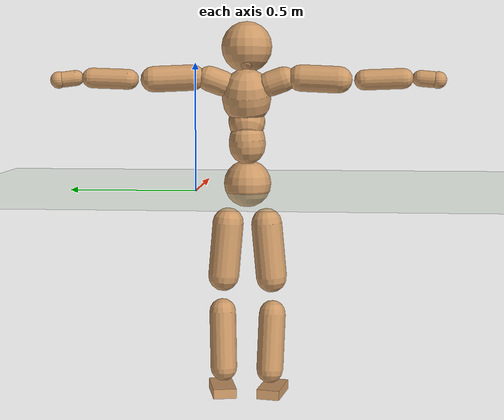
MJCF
<mujoco model="humanoid">
  <compiler coordinate="local"/>
  <default>
    <joint damping="0.0" armature="0.01" stiffness="0.0" limited="true"/>
    <geom conaffinity="1" condim="3" contype="7" margin="0.001" rgba="0.8 0.6 .4 1"/>
  </default>
  <asset>
    <texture type="skybox" builtin="gradient" rgb1=".4 .5 .6" rgb2="0 0 0" width="100" height="100"/>
    <texture builtin="flat" height="1278" mark="cross" markrgb="1 1 1" name="texgeom" random="0.01" rgb1="0.8 0.6 0.4" rgb2="0.8 0.6 0.4" type="cube" width="127"/>
    <texture builtin="checker" height="100" name="texplane" rgb1="0 0 0" rgb2="0.8 0.8 0.8" type="2d" width="100"/>
    <material name="MatPlane" reflectance="0.5" shininess="1" specular="1" texrepeat="60 60" texture="texplane"/>
    <material name="geom" texture="texgeom" texuniform="true"/>
  </asset>
  <worldbody>
    <light cutoff="100" diffuse="1 1 1" dir="-0 0 -1.3" directional="true" exponent="1" pos="0 0 1.3" specular=".1 .1 .1"/>
    <geom conaffinity="1" condim="3" name="floor" pos="0 0 0" rgba="0.8 0.9 0.8 1" size="100 100 .2" type="plane" material="MatPlane"/>
    <body name="Pelvis" pos="-0.0011 -0.2038 0.0321">
      <freejoint name="Pelvis"/>
      <geom type="sphere" contype="1" conaffinity="1" density="500" size="0.0924" pos="0.0000 0.0000 0.0000" name="Pelvis"/>
      <body name="L_Hip" pos="-0.0043 0.0707 -0.0867">
        <joint name="L_Hip_x" type="hinge" pos="0 0 0" axis="1 0 0" stiffness="800" damping="80" armature="0.02" range="-180.0000 180.0000"/>
        <joint name="L_Hip_y" type="hinge" pos="0 0 0" axis="0 1 0" stiffness="800" damping="80" armature="0.02" range="-180.0000 180.0000"/>
        <joint name="L_Hip_z" type="hinge" pos="0 0 0" axis="0 0 1" stiffness="800" damping="80" armature="0.02" range="-180.0000 180.0000"/>
        <geom type="capsule" contype="1" conaffinity="1" density="500" fromto="-0.0016 0.0057 -0.0699 -0.0065 0.0229 -0.2796" size="0.0611" name="L_Hip"/>
        <body name="L_Knee" pos="-0.0081 0.0286 -0.3495">
          <joint name="L_Knee_x" type="hinge" pos="0 0 0" axis="1 0 0" stiffness="800" damping="80" armature="0.02" range="-180.0000 180.0000"/>
          <joint name="L_Knee_y" type="hinge" pos="0 0 0" axis="0 1 0" stiffness="800" damping="80" armature="0.02" range="-180.0000 180.0000"/>
          <joint name="L_Knee_z" type="hinge" pos="0 0 0" axis="0 0 1" stiffness="800" damping="80" armature="0.02" range="-180.0000 180.0000"/>
          <geom type="capsule" contype="1" conaffinity="1" density="500" fromto="-0.0084 -0.0022 -0.0737 -0.0336 -0.0087 -0.2947" size="0.0523" name="L_Knee"/>
          <body name="L_Ankle" pos="-0.042 -0.0108 -0.3683">
            <joint name="L_Ankle_x" type="hinge" pos="0 0 0" axis="1 0 0" stiffness="800" damping="80" armature="0.02" range="-180.0000 180.0000"/>
            <joint name="L_Ankle_y" type="hinge" pos="0 0 0" axis="0 1 0" stiffness="800" damping="80" armature="0.02" range="-180.0000 180.0000"/>
            <joint name="L_Ankle_z" type="hinge" pos="0 0 0" axis="0 0 1" stiffness="800" damping="80" armature="0.02" range="-180.0000 180.0000"/>
            <geom type="box" contype="1" conaffinity="1" density="500" pos="0.0561 0.0122 -0.0267" size="0.0815 0.046 0.0194" quat="0.9942 0.0000 0.0000 0.1071" name="L_Ankle"/>
            <body name="L_Toe" pos="0.1122 0.0245 -0.0533">
              <joint name="L_Toe_x" type="hinge" pos="0 0 0" axis="1 0 0" stiffness="500" damping="50" armature="0.02" range="-180.0000 180.0000"/>
              <joint name="L_Toe_y" type="hinge" pos="0 0 0" axis="0 1 0" stiffness="500" damping="50" armature="0.02" range="-180.0000 180.0000"/>
              <joint name="L_Toe_z" type="hinge" pos="0 0 0" axis="0 0 1" stiffness="500" damping="50" armature="0.02" range="-180.0000 180.0000"/>
              <geom type="box" contype="1" conaffinity="1" density="500" pos="0.0000 0.0000 0.0264" size="0.0009 0.0023 0.001" quat="0.9935 0.0000 0.0000 0.1136" name="L_Toe"/>
            </body>
          </body>
        </body>
      </body>
      <body name="R_Hip" pos="-0.0016 -0.0688 -0.0862">
        <joint name="R_Hip_x" type="hinge" pos="0 0 0" axis="1 0 0" stiffness="800" damping="80" armature="0.02" range="-180.0000 180.0000"/>
        <joint name="R_Hip_y" type="hinge" pos="0 0 0" axis="0 1 0" stiffness="800" damping="80" armature="0.02" range="-180.0000 180.0000"/>
        <joint name="R_Hip_z" type="hinge" pos="0 0 0" axis="0 0 1" stiffness="800" damping="80" armature="0.02" range="-180.0000 180.0000"/>
        <geom type="capsule" contype="1" conaffinity="1" density="500" fromto="-0.0020 -0.0067 -0.0710 -0.0081 -0.0268 -0.2839" size="0.0604" name="R_Hip"/>
        <body name="R_Knee" pos="-0.0101 -0.0335 -0.3549">
          <joint name="R_Knee_x" type="hinge" pos="0 0 0" axis="1 0 0" stiffness="800" damping="80" armature="0.02" range="-180.0000 180.0000"/>
          <joint name="R_Knee_y" type="hinge" pos="0 0 0" axis="0 1 0" stiffness="800" damping="80" armature="0.02" range="-180.0000 180.0000"/>
          <joint name="R_Knee_z" type="hinge" pos="0 0 0" axis="0 0 1" stiffness="800" damping="80" armature="0.02" range="-180.0000 180.0000"/>
          <geom type="capsule" contype="1" conaffinity="1" density="500" fromto="-0.0082 0.0025 -0.0738 -0.0330 0.0101 -0.2951" size="0.0525" name="R_Knee"/>
          <body name="R_Ankle" pos="-0.0412 0.0126 -0.3689">
            <joint name="R_Ankle_x" type="hinge" pos="0 0 0" axis="1 0 0" stiffness="800" damping="80" armature="0.02" range="-180.0000 180.0000"/>
            <joint name="R_Ankle_y" type="hinge" pos="0 0 0" axis="0 1 0" stiffness="800" damping="80" armature="0.02" range="-180.0000 180.0000"/>
            <joint name="R_Ankle_z" type="hinge" pos="0 0 0" axis="0 0 1" stiffness="800" damping="80" armature="0.02" range="-180.0000 180.0000"/>
            <geom type="box" contype="1" conaffinity="1" density="500" pos="0.0578 -0.0113 -0.0223" size="0.082 0.0455 0.0194" quat="0.9954 0.0000 0.0000 -0.0961" name="R_Ankle"/>
            <body name="R_Toe" pos="0.1156 -0.0225 -0.0446">
              <joint name="R_Toe_x" type="hinge" pos="0 0 0" axis="1 0 0" stiffness="500" damping="50" armature="0.02" range="-180.0000 180.0000"/>
              <joint name="R_Toe_y" type="hinge" pos="0 0 0" axis="0 1 0" stiffness="500" damping="50" armature="0.02" range="-180.0000 180.0000"/>
              <joint name="R_Toe_z" type="hinge" pos="0 0 0" axis="0 0 1" stiffness="500" damping="50" armature="0.02" range="-180.0000 180.0000"/>
              <geom type="box" contype="1" conaffinity="1" density="500" pos="0.0000 0.0000 0.0239" size="0.0009 0.0023 0.0011" quat="0.9963 0.0000 0.0000 -0.0863" name="R_Toe"/>
            </body>
          </body>
        </body>
      </body>
      <body name="Torso" pos="-0.025 -0.0022 0.1003">
        <joint name="Torso_x" type="hinge" pos="0 0 0" axis="1 0 0" stiffness="1000" damping="100" armature="0.02" range="-180.0000 180.0000"/>
        <joint name="Torso_y" type="hinge" pos="0 0 0" axis="0 1 0" stiffness="1000" damping="100" armature="0.02" range="-180.0000 180.0000"/>
        <joint name="Torso_z" type="hinge" pos="0 0 0" axis="0 0 1" stiffness="1000" damping="100" armature="0.02" range="-180.0000 180.0000"/>
        <geom type="capsule" contype="1" conaffinity="1" density="500" fromto="-0.0020 0.0019 0.0715 -0.0013 0.0013 0.0477" size="0.0705" name="Torso"/>
        <body name="Spine" pos="-0.0033 0.0032 0.1192">
          <joint name="Spine_x" type="hinge" pos="0 0 0" axis="1 0 0" stiffness="1000" damping="100" armature="0.02" range="-180.0000 180.0000"/>
          <joint name="Spine_y" type="hinge" pos="0 0 0" axis="0 1 0" stiffness="1000" damping="100" armature="0.02" range="-180.0000 180.0000"/>
          <joint name="Spine_z" type="hinge" pos="0 0 0" axis="0 0 1" stiffness="1000" damping="100" armature="0.02" range="-180.0000 180.0000"/>
          <geom type="capsule" contype="1" conaffinity="1" density="500" fromto="0.0162 0.0013 0.0282 0.0108 0.0009 0.0188" size="0.0712" name="Spine"/>
          <body name="Chest" pos="0.027 0.0021 0.047">
            <joint name="Chest_x" type="hinge" pos="0 0 0" axis="1 0 0" stiffness="1000" damping="100" armature="0.02" range="-180.0000 180.0000"/>
            <joint name="Chest_y" type="hinge" pos="0 0 0" axis="0 1 0" stiffness="1000" damping="100" armature="0.02" range="-180.0000 180.0000"/>
            <joint name="Chest_z" type="hinge" pos="0 0 0" axis="0 0 1" stiffness="1000" damping="100" armature="0.02" range="-180.0000 180.0000"/>
            <geom type="capsule" contype="1" conaffinity="1" density="500" fromto="-0.0264 -0.0008 0.0868 -0.0176 -0.0005 0.0579" size="0.0941" name="Chest"/>
            <body name="Neck" pos="-0.0512 -0.0022 0.2033">
              <joint name="Neck_x" type="hinge" pos="0 0 0" axis="1 0 0" stiffness="500" damping="50" armature="0.02" range="-180.0000 180.0000"/>
              <joint name="Neck_y" type="hinge" pos="0 0 0" axis="0 1 0" stiffness="500" damping="50" armature="0.02" range="-180.0000 180.0000"/>
              <joint name="Neck_z" type="hinge" pos="0 0 0" axis="0 0 1" stiffness="500" damping="50" armature="0.02" range="-180.0000 180.0000"/>
              <geom type="capsule" contype="1" conaffinity="1" density="500" fromto="0.0095 0.0005 0.0116 0.0381 0.0019 0.0465" size="0.0406" name="Neck"/>
              <body name="Head" pos="0.0477 0.0024 0.0582">
                <joint name="Head_x" type="hinge" pos="0 0 0" axis="1 0 0" stiffness="500" damping="50" armature="0.02" range="-180.0000 180.0000"/>
                <joint name="Head_y" type="hinge" pos="0 0 0" axis="0 1 0" stiffness="500" damping="50" armature="0.02" range="-180.0000 180.0000"/>
                <joint name="Head_z" type="hinge" pos="0 0 0" axis="0 0 1" stiffness="500" damping="50" armature="0.02" range="-180.0000 180.0000"/>
                <geom type="sphere" contype="1" conaffinity="1" density="500" size="0.0978" pos="0.0000 0.0000 0.0000" name="Head"/>
              </body>
            </body>
            <body name="L_Thorax" pos="-0.0383 0.073 0.1162">
              <joint name="L_Thorax_x" type="hinge" pos="0 0 0" axis="1 0 0" stiffness="500" damping="50" armature="0.02" range="-180.0000 180.0000"/>
              <joint name="L_Thorax_y" type="hinge" pos="0 0 0" axis="0 1 0" stiffness="500" damping="50" armature="0.02" range="-180.0000 180.0000"/>
              <joint name="L_Thorax_z" type="hinge" pos="0 0 0" axis="0 0 1" stiffness="500" damping="50" armature="0.02" range="-180.0000 180.0000"/>
              <geom type="capsule" contype="1" conaffinity="1" density="500" fromto="-0.0015 0.0167 0.0061 -0.0058 0.0670 0.0245" size="0.0491" name="L_Thorax"/>
              <body name="L_Shoulder" pos="-0.0073 0.0837 0.0306">
                <joint name="L_Shoulder_x" type="hinge" pos="0 0 0" axis="1 0 0" stiffness="500" damping="50" armature="0.02" range="-720.0000 720.0000"/>
                <joint name="L_Shoulder_y" type="hinge" pos="0 0 0" axis="0 1 0" stiffness="500" damping="50" armature="0.02" range="-720.0000 720.0000"/>
                <joint name="L_Shoulder_z" type="hinge" pos="0 0 0" axis="0 0 1" stiffness="500" damping="50" armature="0.02" range="-720.0000 720.0000"/>
                <geom type="capsule" contype="1" conaffinity="1" density="500" fromto="-0.0055 0.0489 -0.0021 -0.0220 0.1957 -0.0084" size="0.0501" name="L_Shoulder"/>
                <body name="L_Elbow" pos="-0.0275 0.2446 -0.0104">
                  <joint name="L_Elbow_x" type="hinge" pos="0 0 0" axis="1 0 0" stiffness="500" damping="50" armature="0.02" range="-720.0000 720.0000"/>
                  <joint name="L_Elbow_y" type="hinge" pos="0 0 0" axis="0 1 0" stiffness="500" damping="50" armature="0.02" range="-720.0000 720.0000"/>
                  <joint name="L_Elbow_z" type="hinge" pos="0 0 0" axis="0 0 1" stiffness="500" damping="50" armature="0.02" range="-720.0000 720.0000"/>
                  <geom type="capsule" contype="1" conaffinity="1" density="500" fromto="0.0001 0.0470 0.0017 0.0003 0.1880 0.0070" size="0.0389" name="L_Elbow"/>
                  <body name="L_Wrist" pos="0.0003 0.235 0.0087">
                    <joint name="L_Wrist_x" type="hinge" pos="0 0 0" axis="1 0 0" stiffness="300" damping="30" armature="0.02" range="-180.0000 180.0000"/>
                    <joint name="L_Wrist_y" type="hinge" pos="0 0 0" axis="0 1 0" stiffness="300" damping="30" armature="0.02" range="-180.0000 180.0000"/>
                    <joint name="L_Wrist_z" type="hinge" pos="0 0 0" axis="0 0 1" stiffness="300" damping="30" armature="0.02" range="-180.0000 180.0000"/>
                    <geom type="capsule" contype="1" conaffinity="1" density="500" fromto="-0.0027 0.0161 -0.0019 -0.0107 0.0644 -0.0078" size="0.0304" name="L_Wrist"/>
                    <body name="L_Hand" pos="-0.0134 0.0805 -0.0097">
                      <joint name="L_Hand_x" type="hinge" pos="0 0 0" axis="1 0 0" stiffness="300" damping="30" armature="0.02" range="-180.0000 180.0000"/>
                      <joint name="L_Hand_y" type="hinge" pos="0 0 0" axis="0 1 0" stiffness="300" damping="30" armature="0.02" range="-180.0000 180.0000"/>
                      <joint name="L_Hand_z" type="hinge" pos="0 0 0" axis="0 0 1" stiffness="300" damping="30" armature="0.02" range="-180.0000 180.0000"/>
                      <geom type="sphere" contype="1" conaffinity="1" density="500" size="0.0325" pos="0.0000 0.0000 0.0000" name="L_Hand"/>
                    </body>
                  </body>
                </body>
              </body>
            </body>
            <body name="R_Thorax" pos="-0.0426 -0.0749 0.1146">
              <joint name="R_Thorax_x" type="hinge" pos="0 0 0" axis="1 0 0" stiffness="500" damping="50" armature="0.02" range="-180.0000 180.0000"/>
              <joint name="R_Thorax_y" type="hinge" pos="0 0 0" axis="0 1 0" stiffness="500" damping="50" armature="0.02" range="-180.0000 180.0000"/>
              <joint name="R_Thorax_z" type="hinge" pos="0 0 0" axis="0 0 1" stiffness="500" damping="50" armature="0.02" range="-180.0000 180.0000"/>
              <geom type="capsule" contype="1" conaffinity="1" density="500" fromto="-0.0019 -0.0174 0.0061 -0.0075 -0.0697 0.0246" size="0.0482" name="R_Thorax"/>
              <body name="R_Shoulder" pos="-0.0094 -0.0872 0.0307">
                <joint name="R_Shoulder_x" type="hinge" pos="0 0 0" axis="1 0 0" stiffness="500" damping="50" armature="0.02" range="-720.0000 720.0000"/>
                <joint name="R_Shoulder_y" type="hinge" pos="0 0 0" axis="0 1 0" stiffness="500" damping="50" armature="0.02" range="-720.0000 720.0000"/>
                <joint name="R_Shoulder_z" type="hinge" pos="0 0 0" axis="0 0 1" stiffness="500" damping="50" armature="0.02" range="-720.0000 720.0000"/>
                <geom type="capsule" contype="1" conaffinity="1" density="500" fromto="-0.0040 -0.0478 -0.0022 -0.0161 -0.1913 -0.0087" size="0.0512" name="R_Shoulder"/>
                <body name="R_Elbow" pos="-0.0202 -0.2391 -0.0109">
                  <joint name="R_Elbow_x" type="hinge" pos="0 0 0" axis="1 0 0" stiffness="500" damping="50" armature="0.02" range="-720.0000 720.0000"/>
                  <joint name="R_Elbow_y" type="hinge" pos="0 0 0" axis="0 1 0" stiffness="500" damping="50" armature="0.02" range="-720.0000 720.0000"/>
                  <joint name="R_Elbow_z" type="hinge" pos="0 0 0" axis="0 0 1" stiffness="500" damping="50" armature="0.02" range="-720.0000 720.0000"/>
                  <geom type="capsule" contype="1" conaffinity="1" density="500" fromto="-0.0005 -0.0481 0.0018 -0.0021 -0.1922 0.0072" size="0.0388" name="R_Elbow"/>
                  <body name="R_Wrist" pos="-0.0026 -0.2403 0.009">
                    <joint name="R_Wrist_x" type="hinge" pos="0 0 0" axis="1 0 0" stiffness="300" damping="30" armature="0.02" range="-180.0000 180.0000"/>
                    <joint name="R_Wrist_y" type="hinge" pos="0 0 0" axis="0 1 0" stiffness="300" damping="30" armature="0.02" range="-180.0000 180.0000"/>
                    <joint name="R_Wrist_z" type="hinge" pos="0 0 0" axis="0 0 1" stiffness="300" damping="30" armature="0.02" range="-180.0000 180.0000"/>
                    <geom type="capsule" contype="1" conaffinity="1" density="500" fromto="-0.0021 -0.0162 -0.0015 -0.0084 -0.0646 -0.0058" size="0.0311" name="R_Wrist"/>
                    <body name="R_Hand" pos="-0.0105 -0.0808 -0.0073">
                      <joint name="R_Hand_x" type="hinge" pos="0 0 0" axis="1 0 0" stiffness="300" damping="30" armature="0.02" range="-180.0000 180.0000"/>
                      <joint name="R_Hand_y" type="hinge" pos="0 0 0" axis="0 1 0" stiffness="300" damping="30" armature="0.02" range="-180.0000 180.0000"/>
                      <joint name="R_Hand_z" type="hinge" pos="0 0 0" axis="0 0 1" stiffness="300" damping="30" armature="0.02" range="-180.0000 180.0000"/>
                      <geom type="sphere" contype="1" conaffinity="1" density="500" size="0.0325" pos="0.0000 0.0000 0.0000" name="R_Hand"/>
                    </body>
                  </body>
                </body>
              </body>
            </body>
          </body>
        </body>
      </body>
    </body>
  </worldbody>
  <actuator>
    <motor name="L_Hip_x" joint="L_Hip_x" gear="500"/>
    <motor name="L_Hip_y" joint="L_Hip_y" gear="500"/>
    <motor name="L_Hip_z" joint="L_Hip_z" gear="500"/>
    <motor name="L_Knee_x" joint="L_Knee_x" gear="500"/>
    <motor name="L_Knee_y" joint="L_Knee_y" gear="500"/>
    <motor name="L_Knee_z" joint="L_Knee_z" gear="500"/>
    <motor name="L_Ankle_x" joint="L_Ankle_x" gear="500"/>
    <motor name="L_Ankle_y" joint="L_Ankle_y" gear="500"/>
    <motor name="L_Ankle_z" joint="L_Ankle_z" gear="500"/>
    <motor name="L_Toe_x" joint="L_Toe_x" gear="500"/>
    <motor name="L_Toe_y" joint="L_Toe_y" gear="500"/>
    <motor name="L_Toe_z" joint="L_Toe_z" gear="500"/>
    <motor name="R_Hip_x" joint="R_Hip_x" gear="500"/>
    <motor name="R_Hip_y" joint="R_Hip_y" gear="500"/>
    <motor name="R_Hip_z" joint="R_Hip_z" gear="500"/>
    <motor name="R_Knee_x" joint="R_Knee_x" gear="500"/>
    <motor name="R_Knee_y" joint="R_Knee_y" gear="500"/>
    <motor name="R_Knee_z" joint="R_Knee_z" gear="500"/>
    <motor name="R_Ankle_x" joint="R_Ankle_x" gear="500"/>
    <motor name="R_Ankle_y" joint="R_Ankle_y" gear="500"/>
    <motor name="R_Ankle_z" joint="R_Ankle_z" gear="500"/>
    <motor name="R_Toe_x" joint="R_Toe_x" gear="500"/>
    <motor name="R_Toe_y" joint="R_Toe_y" gear="500"/>
    <motor name="R_Toe_z" joint="R_Toe_z" gear="500"/>
    <motor name="Torso_x" joint="Torso_x" gear="500"/>
    <motor name="Torso_y" joint="Torso_y" gear="500"/>
    <motor name="Torso_z" joint="Torso_z" gear="500"/>
    <motor name="Spine_x" joint="Spine_x" gear="500"/>
    <motor name="Spine_y" joint="Spine_y" gear="500"/>
    <motor name="Spine_z" joint="Spine_z" gear="500"/>
    <motor name="Chest_x" joint="Chest_x" gear="500"/>
    <motor name="Chest_y" joint="Chest_y" gear="500"/>
    <motor name="Chest_z" joint="Chest_z" gear="500"/>
    <motor name="Neck_x" joint="Neck_x" gear="500"/>
    <motor name="Neck_y" joint="Neck_y" gear="500"/>
    <motor name="Neck_z" joint="Neck_z" gear="500"/>
    <motor name="Head_x" joint="Head_x" gear="500"/>
    <motor name="Head_y" joint="Head_y" gear="500"/>
    <motor name="Head_z" joint="Head_z" gear="500"/>
    <motor name="L_Thorax_x" joint="L_Thorax_x" gear="500"/>
    <motor name="L_Thorax_y" joint="L_Thorax_y" gear="500"/>
    <motor name="L_Thorax_z" joint="L_Thorax_z" gear="500"/>
    <motor name="L_Shoulder_x" joint="L_Shoulder_x" gear="500"/>
    <motor name="L_Shoulder_y" joint="L_Shoulder_y" gear="500"/>
    <motor name="L_Shoulder_z" joint="L_Shoulder_z" gear="500"/>
    <motor name="L_Elbow_x" joint="L_Elbow_x" gear="500"/>
    <motor name="L_Elbow_y" joint="L_Elbow_y" gear="500"/>
    <motor name="L_Elbow_z" joint="L_Elbow_z" gear="500"/>
    <motor name="L_Wrist_x" joint="L_Wrist_x" gear="500"/>
    <motor name="L_Wrist_y" joint="L_Wrist_y" gear="500"/>
    <motor name="L_Wrist_z" joint="L_Wrist_z" gear="500"/>
    <motor name="L_Hand_x" joint="L_Hand_x" gear="500"/>
    <motor name="L_Hand_y" joint="L_Hand_y" gear="500"/>
    <motor name="L_Hand_z" joint="L_Hand_z" gear="500"/>
    <motor name="R_Thorax_x" joint="R_Thorax_x" gear="500"/>
    <motor name="R_Thorax_y" joint="R_Thorax_y" gear="500"/>
    <motor name="R_Thorax_z" joint="R_Thorax_z" gear="500"/>
    <motor name="R_Shoulder_x" joint="R_Shoulder_x" gear="500"/>
    <motor name="R_Shoulder_y" joint="R_Shoulder_y" gear="500"/>
    <motor name="R_Shoulder_z" joint="R_Shoulder_z" gear="500"/>
    <motor name="R_Elbow_x" joint="R_Elbow_x" gear="500"/>
    <motor name="R_Elbow_y" joint="R_Elbow_y" gear="500"/>
    <motor name="R_Elbow_z" joint="R_Elbow_z" gear="500"/>
    <motor name="R_Wrist_x" joint="R_Wrist_x" gear="500"/>
    <motor name="R_Wrist_y" joint="R_Wrist_y" gear="500"/>
    <motor name="R_Wrist_z" joint="R_Wrist_z" gear="500"/>
    <motor name="R_Hand_x" joint="R_Hand_x" gear="500"/>
    <motor name="R_Hand_y" joint="R_Hand_y" gear="500"/>
    <motor name="R_Hand_z" joint="R_Hand_z" gear="500"/>
  </actuator>
  <contact>
    <exclude body1="Torso" body2="Chest"/>
    <exclude body1="Head" body2="Chest"/>
    <exclude body1="R_Knee" body2="R_Toe"/>
    <exclude body1="R_Knee" body2="L_Ankle"/>
    <exclude body1="R_Knee" body2="L_Toe"/>
    <exclude body1="L_Knee" body2="L_Toe"/>
    <exclude body1="L_Knee" body2="R_Ankle"/>
    <exclude body1="L_Knee" body2="R_Toe"/>
    <exclude body1="L_Shoulder" body2="Chest"/>
    <exclude body1="R_Shoulder" body2="Chest"/>
  </contact>
  <sensor/>
  <size njmax="700" nconmax="700"/>
</mujoco>
